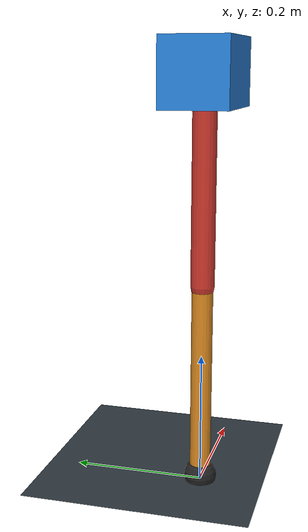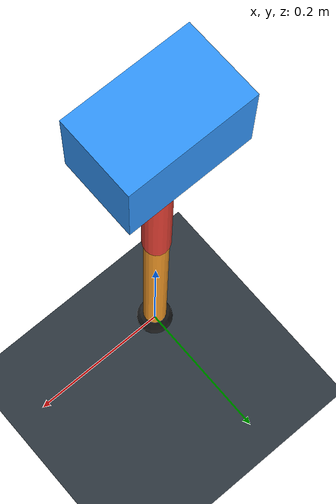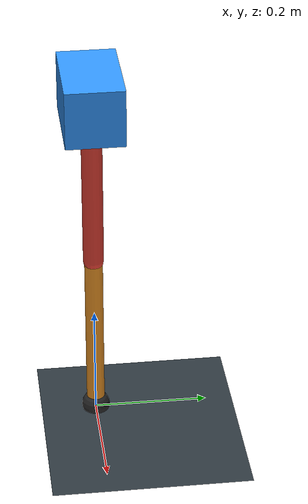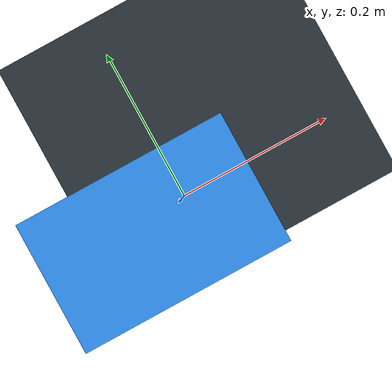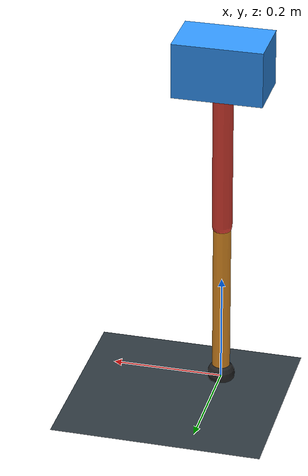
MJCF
<mujoco model="single_axis_two_bar">
  <compiler angle="radian" inertiafromgeom="true"/>
  <option timestep="0.001" integrator="implicitfast" gravity="0 0 -9.81"/>
  <default>
    <joint damping="0.08"/>
    <geom friction="1.2 0.01 0.0001" condim="3"/>
  </default>
  <worldbody>
    <geom name="floor" type="plane" size="5 5 0.1" rgba="0.18 0.22 0.25 1"/>
    <body name="carriage" pos="0 0 0.6213883006275872">
      <joint name="pole_slide" type="slide" axis="0 0 1"/>
      <geom name="payload" type="box" size="0.08 0.05 0.05" mass="2.144922541400476" rgba="0.2 0.6 1 1"/>
      <body name="thigh" pos="0 0 0">
        <joint name="hip" type="hinge" axis="0 1 0"/>
        <geom name="thigh_link" type="capsule" fromto="0 0 0 0 0 -0.31168617140984134" size="0.018" mass="0.22208051569889248" rgba="0.9 0.25 0.2 1"/>
        <body name="shank" pos="0 0 -0.31168617140984134">
          <joint name="knee" type="hinge" axis="0 1 0"/>
          <geom name="shank_link" type="capsule" fromto="0 0 0 0 0 -0.30314712820622786" size="0.016" mass="0.21599633458281708" rgba="0.95 0.6 0.15 1"/>
          <geom name="foot" type="sphere" pos="0 0 -0.30314712820622786" size="0.025" mass="0.03" rgba="0.15 0.15 0.15 1"/>
          <site name="toe" pos="0 0 -0.30314712820622786" size="0.008"/>
        </body>
      </body>
    </body>
  </worldbody>
  <actuator>
    <motor name="hip_motor" joint="hip" ctrlrange="-13.52663161012352 13.52663161012352"/>
    <motor name="knee_motor" joint="knee" ctrlrange="-38.38108423769929 38.38108423769929"/>
  </actuator>
</mujoco>
